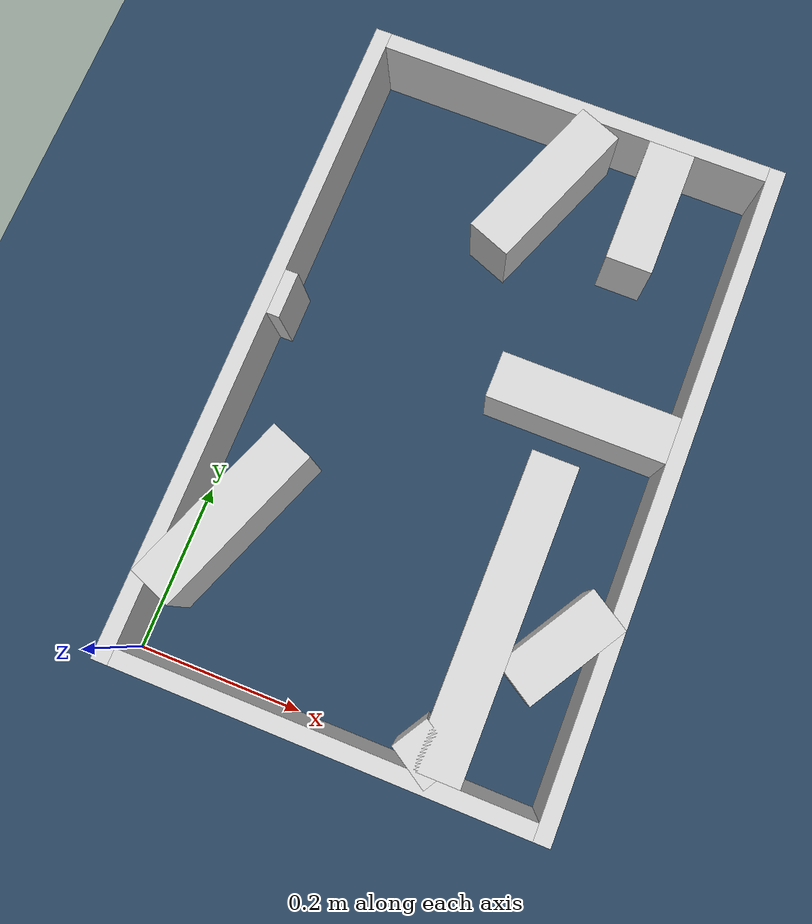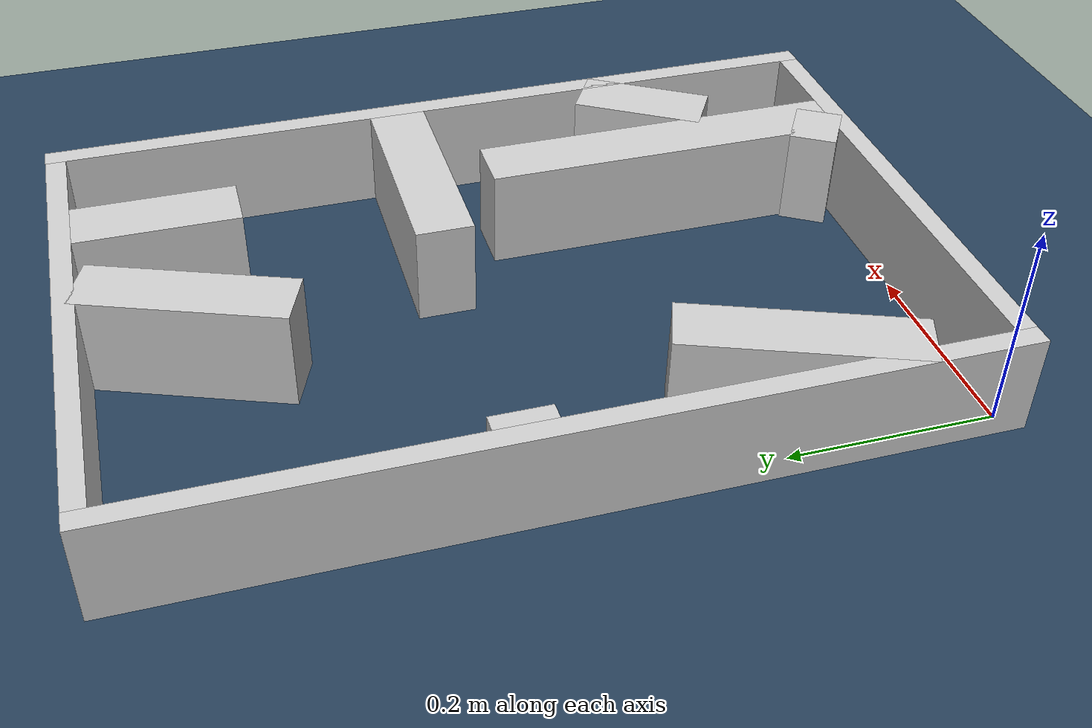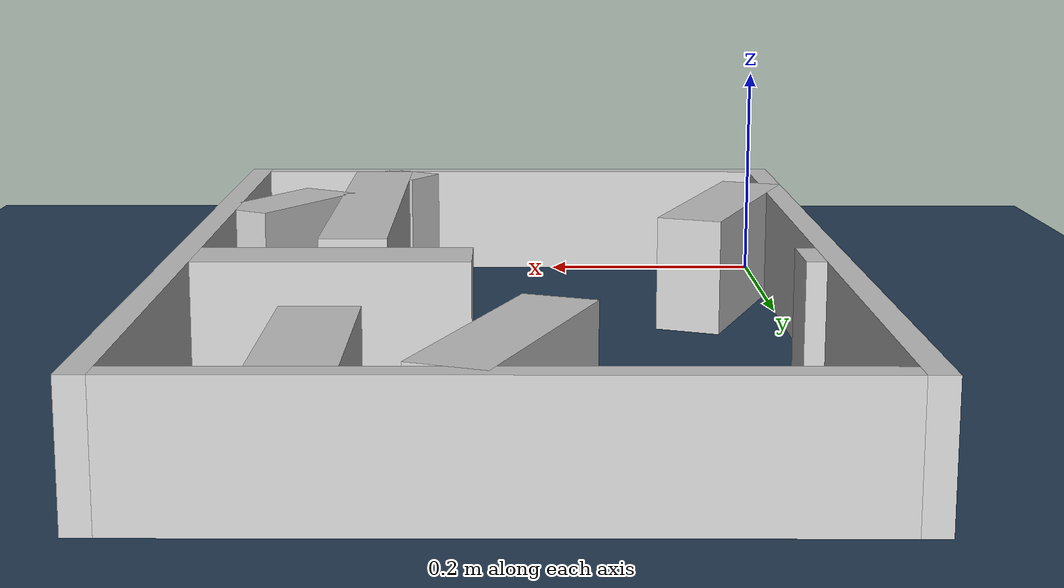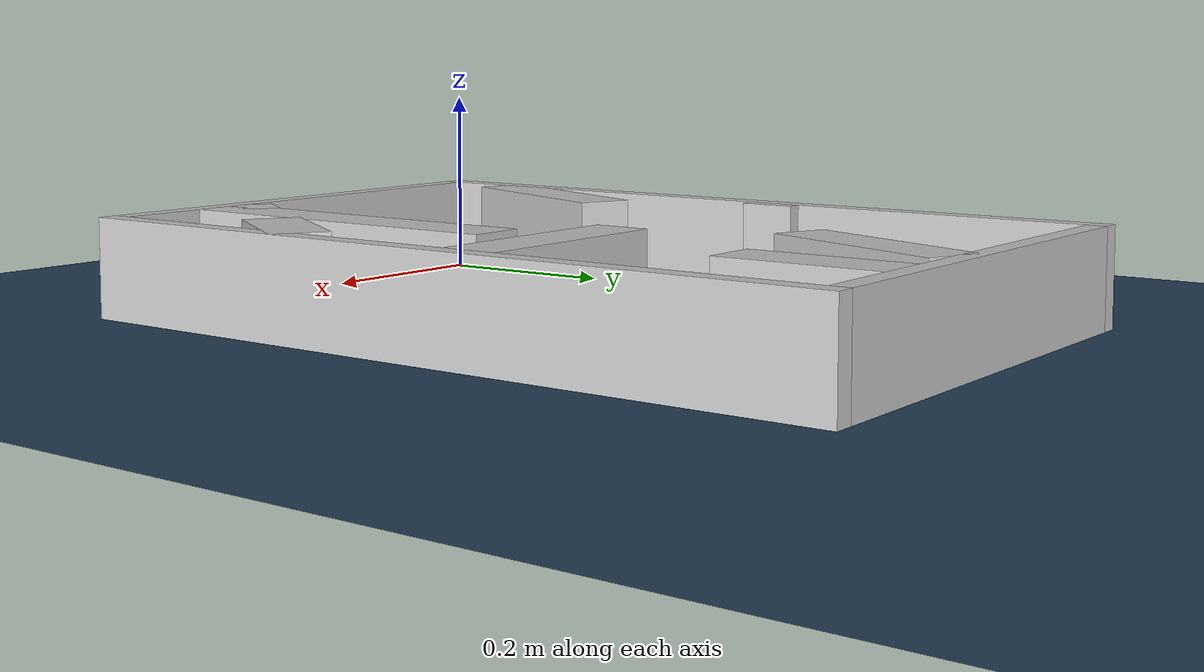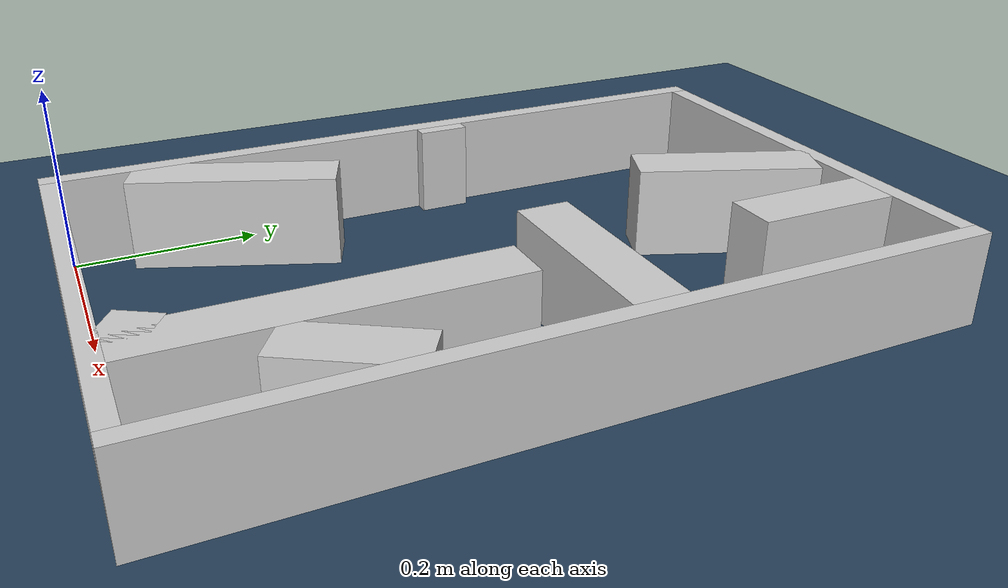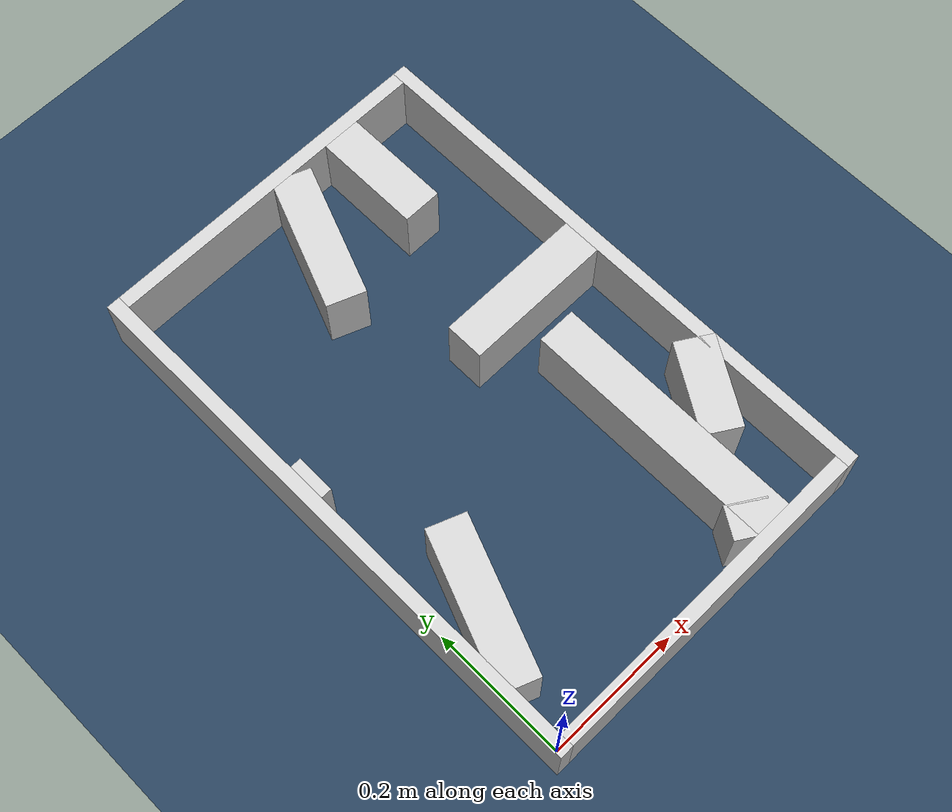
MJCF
<?xml version="1.0" ?>
<mujoco model="generated_real_template">
  <compiler angle="degree"/>
  <option timestep="0.002" integrator="implicitfast" iterations="100" cone="elliptic"/>
  <default>
    <geom density="1"/>
  </default>
  <asset>
    <texture builtin="gradient" height="3072" rgb1="0.3 0.5 0.7" rgb2="0 0 0" type="skybox" width="512"/>
    <texture builtin="checker" height="300" mark="edge" markrgb="0.8 0.8 0.8" name="groundplane" rgb1="0.2 0.3 0.4" rgb2="0.1 0.2 0.3" type="2d" width="300"/>
    <material name="groundplane" reflectance="0.2" texrepeat="5 5" texture="groundplane" texuniform="true"/>
  </asset>
  <worldbody>
    <light dir="0 0 -1" directional="true" pos="0 0 1.5"/>
    <geom name="floor" type="plane" condim="4" friction="0.5 0.005 0.001" material="groundplane" size="0 0 0.05"/>
    <body name="walls">
      <geom name="wall_boundary_left" type="box" condim="4" friction="1.0 0.005 0.0001" rgba="0.8 0.8 0.8 1" pos="-0.010000 0.387500 0.050000" euler="0 0 0.000000" size="0.010000 0.407500 0.050000"/>
      <geom name="wall_boundary_right" type="box" condim="4" friction="1.0 0.005 0.0001" rgba="0.8 0.8 0.8 1" pos="0.500000 0.387500 0.050000" euler="0 0 0.000000" size="0.010000 0.407500 0.050000"/>
      <geom name="wall_boundary_bottom" type="box" condim="4" friction="1.0 0.005 0.0001" rgba="0.8 0.8 0.8 1" pos="0.245000 -0.010000 0.050000" euler="0 0 0.000000" size="0.245000 0.010000 0.050000"/>
      <geom name="wall_boundary_top" type="box" condim="4" friction="1.0 0.005 0.0001" rgba="0.8 0.8 0.8 1" pos="0.245000 0.785000 0.050000" euler="0 0 0.000000" size="0.245000 0.010000 0.050000"/>
      <geom name="wall_inner_1_1" type="box" condim="4" friction="1.0 0.005 0.0001" rgba="0.8 0.8 0.8 1" pos="0.372961 0.184690 0.050000" euler="0 0 90.000000" size="0.184690 0.028500 0.050000"/>
      <geom name="wall_inner_1_2" type="box" condim="4" friction="1.0 0.005 0.0001" rgba="0.8 0.8 0.8 1" pos="0.372961 0.695658 0.050000" euler="0 0 90.000000" size="0.079342 0.028500 0.050000"/>
      <geom name="wall_inner_2_1" type="box" condim="4" friction="1.0 0.005 0.0001" rgba="0.8 0.8 0.8 1" pos="0.353604 0.020012 0.050000" euler="0 0 58.255883" size="0.023532 0.028500 0.050000"/>
      <geom name="wall_inner_2_2" type="box" condim="4" friction="1.0 0.005 0.0001" rgba="0.8 0.8 0.8 1" pos="0.450806 0.177124 0.050000" euler="0 0 58.255883" size="0.066442 0.028500 0.050000"/>
      <geom name="wall_inner_3_1" type="box" condim="4" friction="1.0 0.005 0.0001" rgba="0.8 0.8 0.8 1" pos="0.008115 0.436241 0.050000" euler="0 0 0.000000" size="0.008115 0.028500 0.050000"/>
      <geom name="wall_inner_3_2" type="box" condim="4" friction="1.0 0.005 0.0001" rgba="0.8 0.8 0.8 1" pos="0.381438 0.436241 0.050000" euler="0 0 0.000000" size="0.108562 0.028500 0.050000"/>
      <geom name="wall_inner_4_1" type="box" condim="4" friction="1.0 0.005 0.0001" rgba="0.8 0.8 0.8 1" pos="0.244717 0.680847 0.050000" euler="0 0 -111.353339" size="0.101092 0.028500 0.050000"/>
      <geom name="wall_inner_4_2" type="box" condim="4" friction="1.0 0.005 0.0001" rgba="0.8 0.8 0.8 1" pos="0.047325 0.175951 0.050000" euler="0 0 -111.353339" size="0.111998 0.028500 0.050000"/>
    </body>
  </worldbody>
</mujoco>
